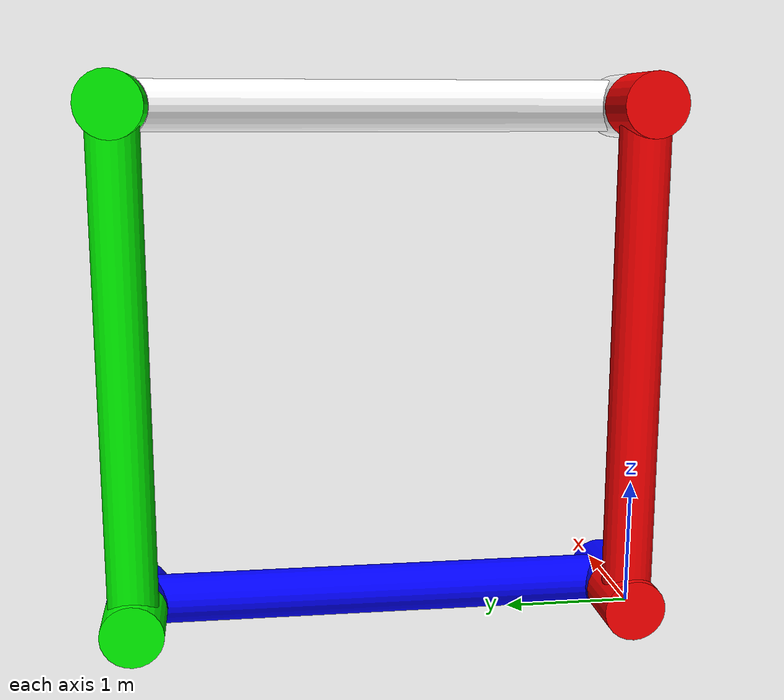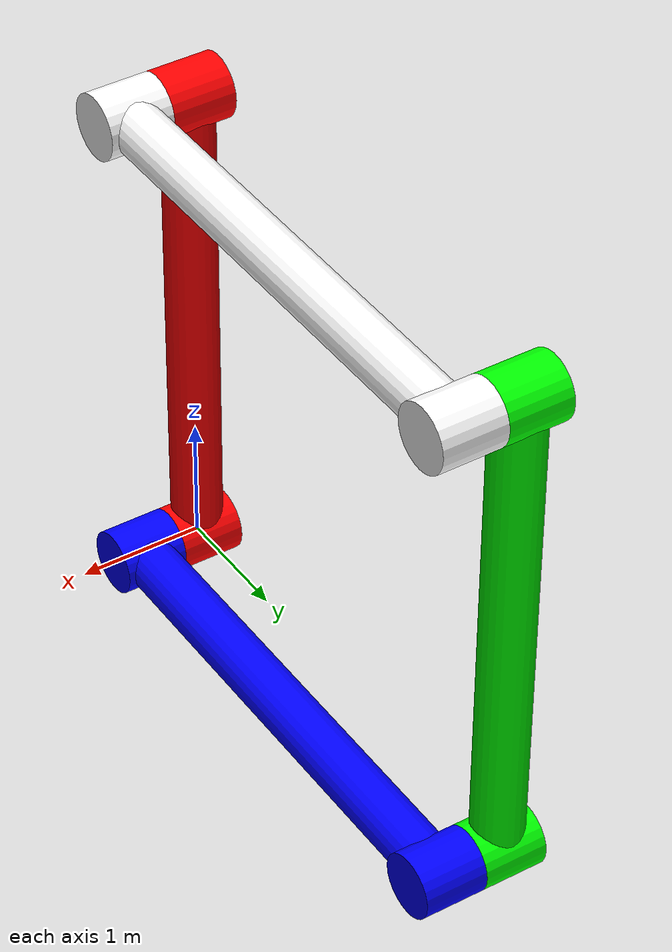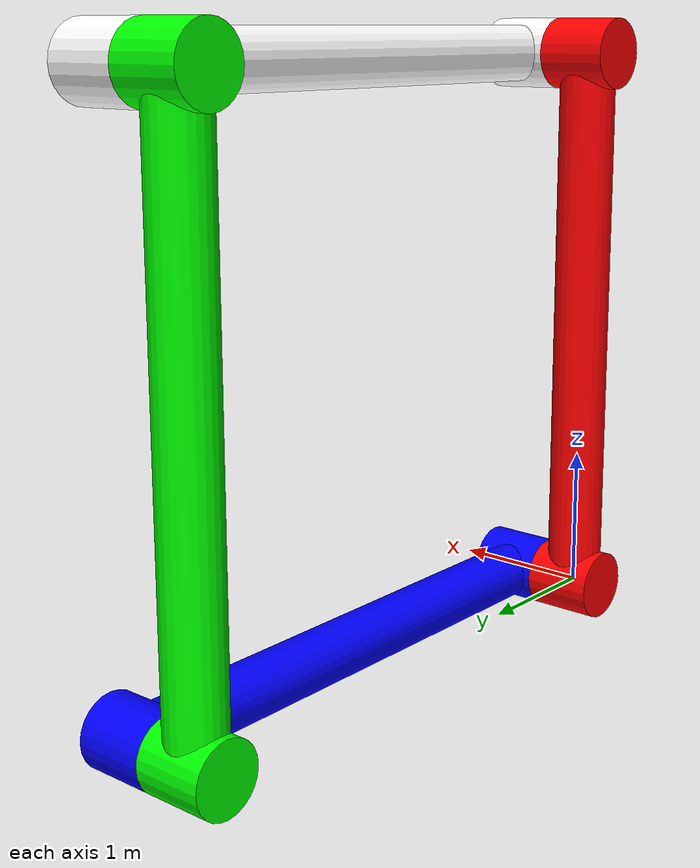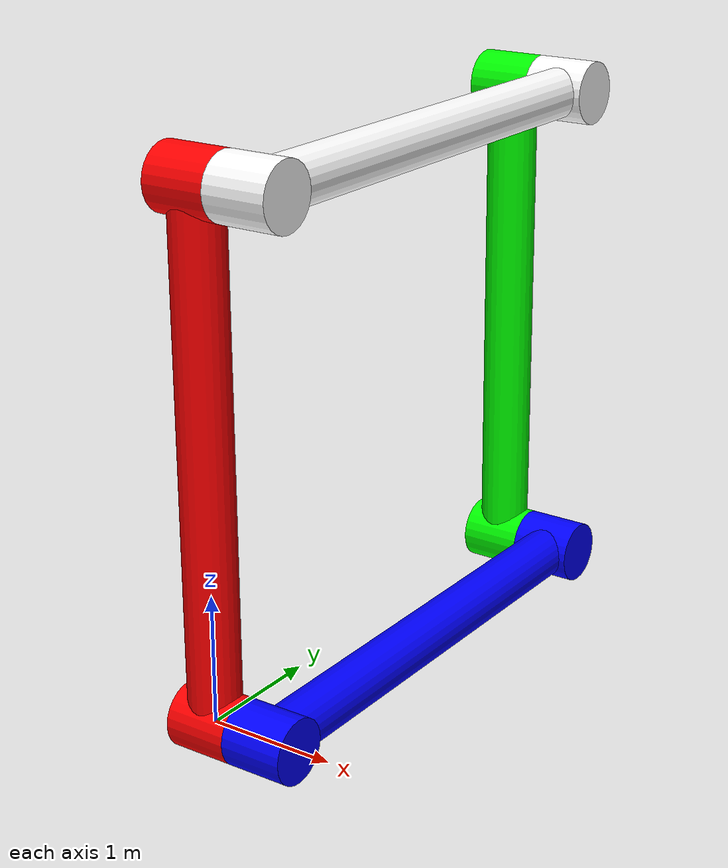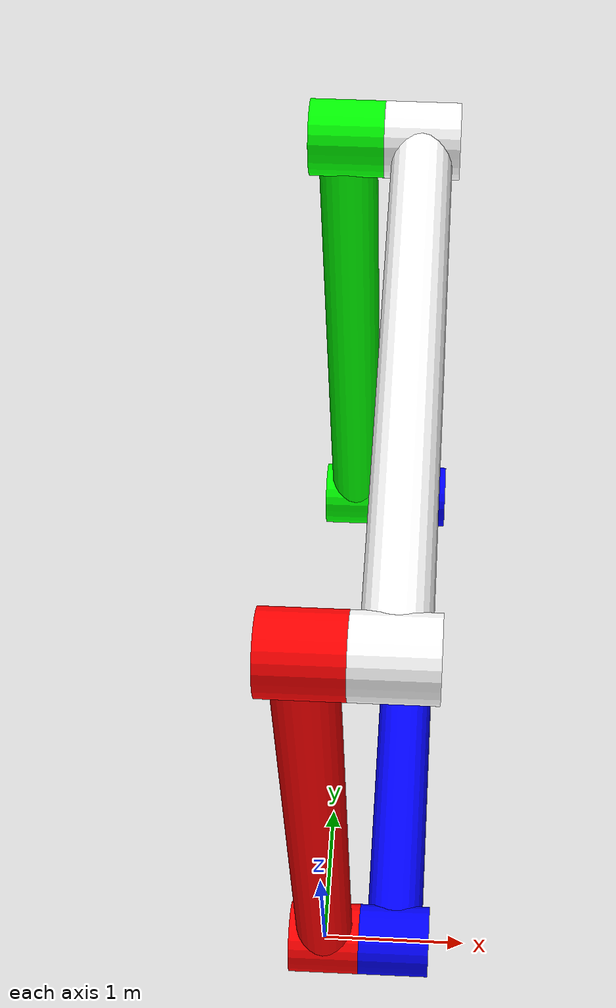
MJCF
<mujoco>
    <option timestep="0.0002" />
    <actuator>
        <position kp="100000" joint="hinge_1" name="actuator_motor" ctrlrange="-3 3" ctrllimited="true"/>
    </actuator>
    <asset>
        <material name="blue_" rgba="0 0 1 1" />
        <material name="green" rgba="0 1 0 1" />
        <material name="red__" rgba="1 0 0 1" />
        <material name="white" rgba="1 1 1 1" />
    </asset>
    <worldbody>
        <geom type="plane" size="10 10 0.1" pos="0 0 -10" rgba=".9 0 0 1" />
        <light diffuse=".5 .5 .5" pos="0 0 3" dir="0 0 -1" />

        <body name="link_1" pos="0 0 0">
            <joint pos="0 0 4" axis="1 0 0" frictionloss='1' damping="1000"/>
            <geom type="cylinder" size=".2    2" pos="0 0 2" euler="0 0 0" material="red__" />
            <geom type="cylinder" size=".25 .25" pos="0 0 4" euler="0 90 0" material="red__" />
            <geom type="cylinder" size=".25 .25" pos="0 0 0" euler="0 90 0" material="red__" />
            <body name="link_2" pos="0.5 0 0" euler="0 0 0">
                <joint name="hinge_1" pos="0 0 0" frictionloss='1' axis="1 0 0" damping="1000"/>
                <geom type="cylinder" size=".2    2" pos="0 2 0" euler="90 0 0" material="blue_" />
                <geom type="cylinder" size=".25 .25" pos="0 4 0" euler="0 90 0" material="blue_" />
                <geom type="cylinder" size=".25 .25" pos="0 0 0" euler="0 90 0" material="blue_" />
                <body name="link_3" pos="-0.5 4 0" euler="0 0 0">
                    <joint name="hinge_2" pos="0 0 0" frictionloss='1' axis="1 0 0" damping="1000"/>
                    <geom type="cylinder" size=".2    2" pos="0 0 2" euler="0 0 0" material="green" />
                    <geom type="cylinder" size=".25 .25" pos="0 0 0" euler="0 90 0" material="green" />
                    <geom type="cylinder" size=".25 .25" pos="0 0 4" euler="0 90 0" material="green" />
                    <body name="link_4" pos="0.5 0 4" euler="0 0 0">
                        <joint name="hinge_3" pos="0 0 0" frictionloss='1' axis="1 0 0" damping="1000"/>
                        <geom type="cylinder" size=".2    2" pos="0 -2 0" euler="90 0 0" material="white" />
                        <geom type="cylinder" size=".25 .25" pos="0 0 0" euler="0 90 0" material="white" />
                        <geom type="cylinder" size=".25 .25" pos="0 -4 0" euler="0 90 0" material="white" />
                    </body>
                </body>
            </body>
        </body>
    </worldbody>
    <equality>
        <connect name="kinematic_link" active="true" body1="link_1" body2="link_4" anchor="0 0 4" />
    </equality>
    <contact>
        <exclude body1="link_1" body2="link_2"/>
        <exclude body1="link_1" body2="link_3"/>
        <exclude body1="link_1" body2="link_4"/>
        <exclude body1="link_2" body2="link_3"/>
        <exclude body1="link_2" body2="link_4"/>
        <exclude body1="link_3" body2="link_4"/>
    </contact>
</mujoco>
